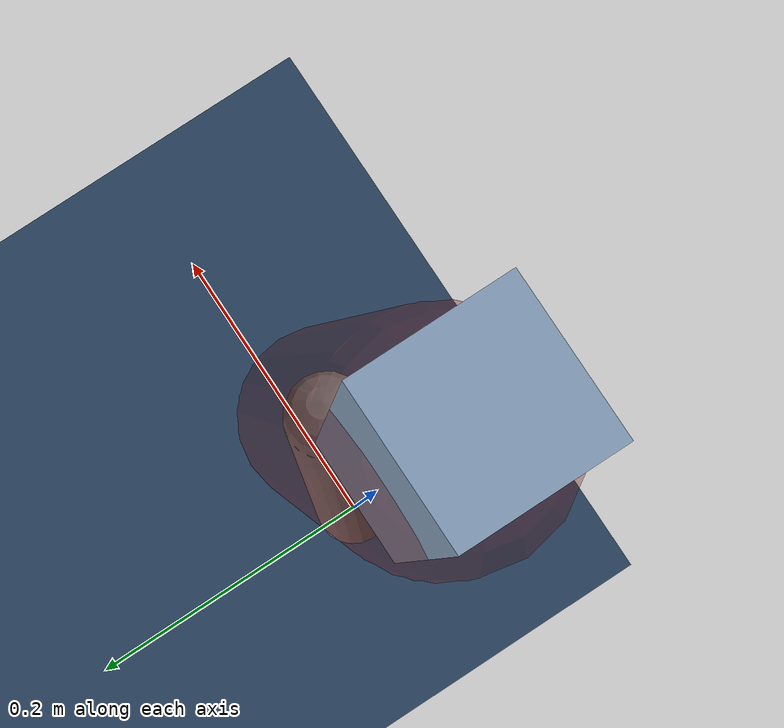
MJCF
<mujoco model="Hopper2D">
	<compiler inertiafromgeom="true" angle="radian" />
	<option timestep="0.001" integrator="implicit" cone="elliptic" solver="Newton" tolerance="1e-10" />

	<default>
		<geom contype="1" conaffinity="1" condim="3" friction="2 0.005 0.0001" solref="0.005 1" />
		<joint limited="true" damping="0.1" />
	</default>

	<asset>
		<texture name="skybox" type="skybox" builtin="gradient" rgb1=".4 .6 .8" rgb2="0 0 0" width="800" height="800" />
		<texture name="grid" type="2d" builtin="checker" rgb1=".1 .2 .3" rgb2=".2 .3 .4" width="300" height="300" mark="edge" markrgb=".2 .3 .4" />
		<material name="ground" texture="grid" texrepeat="1 1" texuniform="true" reflectance="0.1" />
		<material name="leg" rgba="0.5 0.6 0.7 1" />
	</asset>

	<worldbody>

		<geom name="floor" type="plane" size="5 5 0.25" material="ground" />

		<light directional="false" diffuse="0.8 0.8 0.8" specular="0.3 0.3 0.3" pos="0 0 2" dir="0 0 -1" />
		<light mode="targetbodycom" target="base" directional="false" diffuse="0.8 0.8 0.8" specular="0.3 0.3 0.3" pos="0 0 2" dir="0 0 -1" />

		<camera name="fixed" pos="0 -2 1" xyaxes="1 0 0 0 0 1" />
		<camera name="tracking" mode="trackcom" pos="0 -3 1" />

		<body name="root" pos="0 0 0.4984662240977267">
			<joint name="slide_x" type="slide" axis="1 0 0" range="-100 100" />
			<joint name="slide_z" type="slide" axis="0 0 1" range="0 10" />

			<body name="base" pos="0 0 0">
				<geom name="torso" type="box" size="0.03 0.03 0.1" mass="2.181" material="leg" />

				<body name="link1" pos="0 0 0" euler="0 1.407638221041957 0">
					<joint type="hinge" axis="0 -1 0" pos="0 0 0" name="hinge1" limited="true" range="-3.14 3.14" stiffness="0" damping="0.1" />
					<geom name="thigh" type="capsule" fromto="0 0 0 0.30292753933109706 0 0" size="0.05" rgba="0.5 0 0 0.3" mass="0.9966971101270719" />

					<body name="link2" pos="0.30292753933109706 0 0" euler="0 0.40490657493595705 0">
						<joint type="hinge" axis="0 -1 0" pos="0 0 0" name="hinge2" limited="true" range="-3.14 3.14" stiffness="0" damping="0.1" />
						<geom name="shank" type="capsule" fromto="0 0 0 0.20553868476662968 0 0" size="0.025" mass="0.40553094781330373" />

					</body>
				</body>
			</body>
		</body>
	</worldbody>

	<actuator>
		<motor name="torque1" joint="hinge1" ctrlrange="-59.10792128221407 59.10792128221407" ctrllimited="true" gear="1" />
		<motor name="torque2" joint="hinge2" ctrlrange="-81.18833412585678 81.18833412585678" ctrllimited="true" gear="1" />
	</actuator>
</mujoco>
